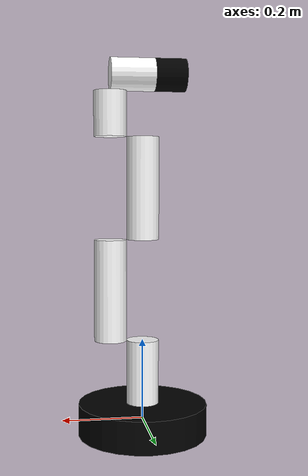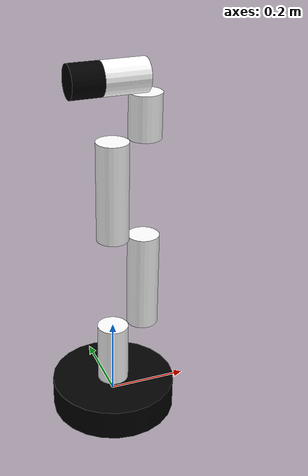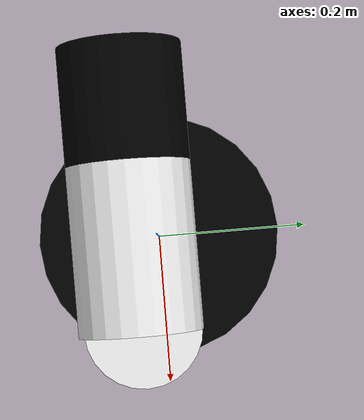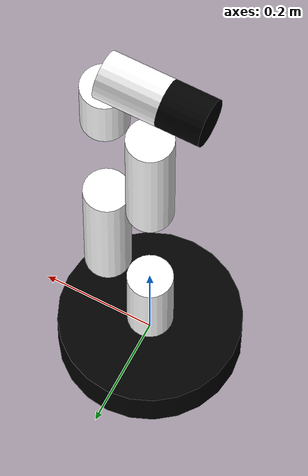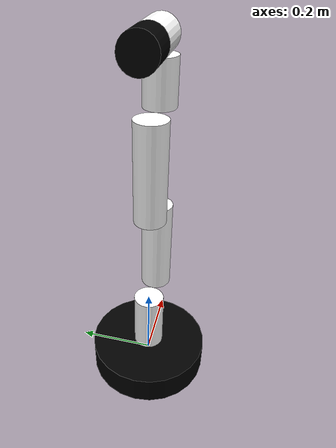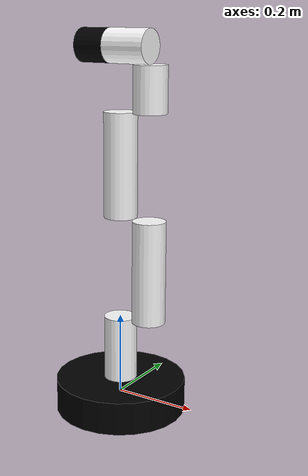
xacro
<?xml version="1.0"?>
<robot  xmlns:xacro="http://www.ros.org/wiki/xacro" name="firefighter_custom" >

<xacro:property name="width" value=".2" />
<xacro:property name="link1_length" value="0.19934" />
<xacro:property name="link2_length" value="0.25" />
<xacro:property name="radius" value="0.04" />
<xacro:property name="link4_length" value="0.1091" />
<xacro:property name="link5_length" value="0.108" />
<xacro:property name="link6_length" value="0.07586" />
<xacro:macro name="color_blue">
  <material name="blue">
    <color rgba="0 0 1 1"/>
  </material>
</xacro:macro>
<xacro:macro name="color_white">
  <material name="white">
    <color rgba="1 1 1 1"/>
  </material>
</xacro:macro>
<xacro:macro name="color_black">
  <material name="black">
    <color rgba="0 0 0 1"/>
  </material>
</xacro:macro>

<xacro:macro name="cylinder_inertia" params="m r h xyz rpy">
        <inertial>
            <origin xyz="${xyz}" rpy="${rpy}" />
            <mass value="${m}" />
            <inertia ixx="${(m/12) * (3*r*r + h*h)}" ixy="0" ixz="0"
                     iyy="${(m/12) * (3*r*r + h*h)}" iyz="0"
                     izz="${(m/2) * (r*r)}" />
        </inertial>
    </xacro:macro>

  <link name="base">
  <visual>
      <geometry>
       <cylinder length="0.08" radius="0.16"/>
      </geometry>
    <origin xyz = "0 0 0 " rpy = " 0 0 0"/>
    <xacro:color_black />
    </visual>
    <collision>
      <geometry>
       <cylinder length="0.08" radius="0.16"/>
      </geometry>
    <origin xyz = "0 0 0 " rpy = " 0 0 0"/>
    </collision>
    <xacro:cylinder_inertia m="5" r="0.16" h="0.08"
                                    xyz="0 0 0" rpy="0 0 0" />
  </link>

  <link name="link1">
    <visual>
      <geometry>
       <cylinder length="${link1_length}" radius="0.04"/>
      </geometry>
    <origin xyz = "0 0 0 " rpy = " 0 0 0"/>
    <xacro:color_white />
    </visual>
    <collision>
      <geometry>
       <cylinder length="${link1_length}" radius="0.04"/>
      </geometry>
    <origin xyz = "0 0 0 " rpy = " 0 0 0"/>
    </collision>
    <xacro:cylinder_inertia m="0.2" r="${radius}" h="${link1_length}"
                                    xyz="0 0 0" rpy="0 0 0" />
  </link>

  <link name="link2">
    <visual>
      <geometry>
      <cylinder length="${link2_length}" radius="0.04"/>
      </geometry>
    <origin xyz = "0 0 ${link2_length / 2.0} " rpy = "0 0 0"/>
    <xacro:color_white />
    </visual>
    <collision>
      <geometry>
       <cylinder length="${link2_length}" radius="0.04"/>
      </geometry>
    <origin xyz = "0 0 ${link2_length / 2.0} " rpy = "0 0 0"/>
    </collision>
    <xacro:cylinder_inertia m="0.2" r="${radius}" h="${link2_length}"
                                    xyz="0 0 ${link2_length / 2.0}" rpy="0 0 0" />
  </link>

  <link name="link3">
    <visual>
      <geometry>
       <cylinder length="${link2_length}" radius="0.04"/>
      </geometry>
    <origin xyz = "0 0 ${link2_length / 2.0}" rpy = " 0 0 0"/>
    <xacro:color_white />
    </visual>
    <collision>
      <geometry>
       <cylinder length="${link2_length}" radius="0.04"/>
      </geometry>
    <origin xyz = "0 0 ${link2_length / 2.0}" rpy = " 0 0 0"/>
    </collision>
    <xacro:cylinder_inertia m="0.2" r="${radius}" h="${link2_length}"
                                    xyz="0 0 ${link2_length / 2.0}" rpy="0 0 0" />
  </link>

  <link name="link4">
    <visual>
      <geometry>
       <cylinder length="${link4_length}" radius="0.04"/>
      </geometry>
    <origin xyz = "0 0 ${link4_length / 2.0}" rpy = " 0 0 0"/>
    <xacro:color_white />
    </visual>
    <collision>
      <geometry>
       <cylinder length="${link4_length}" radius="0.04"/>
      </geometry>
    <origin xyz = "0 0 ${link4_length / 2.0}" rpy = " 0 0 0"/>
      </collision>
    <xacro:cylinder_inertia m="0.2" r="${radius}" h="${link4_length}"
                                    xyz="0 0 ${link4_length / 2.0}" rpy="0 0 0" />
  </link>

<link name="link5">
    <visual>
      <geometry>
       <cylinder length="${link5_length}" radius="0.04"/>
      </geometry>
    <origin xyz = "0 0 ${-link5_length / 2.0}" rpy = " 0 0 0"/>
    <xacro:color_white />
    </visual>
    <collision>
      <geometry>
       <cylinder length="${link5_length}" radius="0.04"/>
      </geometry>
    <origin xyz = "0 0 ${-link5_length / 2.0}" rpy = " 0 0 0"/>
      </collision>
    <xacro:cylinder_inertia m="0.2" r="${radius}" h="${link5_length}"
                                    xyz="0 0 ${-link5_length / 2.0}" rpy="0 0 0" />
  </link>

  <link name="link6">
    <visual>
      <geometry>
      <cylinder length="${link6_length}" radius="0.04"/>
      </geometry>
    <origin xyz = "0 0  0 " rpy = " 0  0 0"/>
    <xacro:color_black/>
    </visual>
    <collision>
      <geometry>
       <cylinder length="${link6_length}" radius="0.04"/>
      </geometry>

    <origin xyz = "0 0  0 " rpy = " 0  0 0"/>
    </collision>
    <xacro:cylinder_inertia m="0.2" r="${radius}" h="${link6_length}"
                                    xyz="0 0 0" rpy="0 0 0" />
  </link>

    <joint name="joint2_to_joint1" type="revolute">
    <axis xyz="0 0 1"/>
    <limit effort = "1000.0" lower = "-3.14" upper = "3.14159" velocity = "0"/>
    <parent link="base"/>
    <child link="link1"/>
    <origin xyz= "0 0 ${link1_length / 2.0}" rpy = "0 0 0"/>
  </joint>

  <joint name="joint3_to_joint2" type="revolute">
    <axis xyz="-1 0 0"/>
    <limit effort = "1000.0" lower = "-3.14" upper = "3.14159" velocity = "0"/>
    <parent link="link1"/>
    <child link="link2"/>
    <origin xyz= "${2.0 * radius} 0 ${link1_length / 2.0}" rpy = "0 0 0"/>
  </joint>

  <joint name="joint4_to_joint3" type="revolute">
    <axis xyz=" -1 0 0"/>
    <limit effort = "1000.0" lower = "-3.14" upper = "3.14159" velocity = "0"/>
    <parent link="link2"/>
    <child link="link3"/>
    <origin xyz= "${-2.0 * radius} 0 ${2.0 * link2_length / 2.0}" rpy = "0 0 0"/>
  </joint>

  <joint name="joint5_to_joint4" type="revolute">
    <axis xyz=" -1 0 0"/>
    <limit effort = "1000.0" lower = "-3.14" upper = "3.14159" velocity = "0"/>
    <parent link="link3"/>
    <child link="link4"/>
    <origin xyz= "${2.0 * radius} 0 ${link2_length}" rpy = "0 0 0"/>
  </joint>

  <joint name="joint6_to_joint5" type="revolute">
    <axis xyz="1 0 0"/>
    <limit effort = "1000.0" lower = "-3.14" upper = "3.14159" velocity = "0"/>
    <parent link="link4"/>
    <child link="link5"/>
    <origin xyz= "0 0 ${((link4_length + link5_length) / 2.0) + radius}" rpy = "0 ${pi / 2.0} 0"/>
  </joint>

  <joint name="joint6output_to_joint6" type="revolute">
    <axis xyz="0 0 -1"/>
    <limit effort = "1000.0" lower = "-3.14" upper = "3.14159" velocity = "0"/>
    <parent link="link5"/>
    <child link="link6"/>
    <origin xyz= "0 0 -${link5_length + link6_length / 2.0}" rpy = "0 0 0 "/>
  </joint>

  <gazebo reference="base">
        <material>Gazebo/Black</material>
    </gazebo>

    <gazebo reference="link1">
        <material>Gazebo/White</material>
    </gazebo>

    <gazebo reference="link2">
        <material>Gazebo/White</material>
    </gazebo>

    <gazebo reference="link3">
        <material>Gazebo/White</material>
    </gazebo>

    <gazebo reference="link4">
        <material>Gazebo/White</material>
    </gazebo>

    <gazebo reference="link5">
        <material>Gazebo/White</material>
    </gazebo>

    <gazebo reference="link6">
        <material>Gazebo/Black</material>
    </gazebo>

    <ros2_control name="GazeboSimSystem" type="system">
      <hardware>
        <plugin>gazebo_ros2_control/GazeboSystem</plugin>
      </hardware>
      <joint name="joint2_to_joint1">
        <command_interface name="position"/>
        <state_interface name="position">
          <param name="initial_value">0.0</param>
        </state_interface>
        <state_interface name="velocity"/>
      </joint>
      <joint name="joint3_to_joint2">
        <command_interface name="position"/>
        <state_interface name="position">
          <param name="initial_value">0.0</param>
        </state_interface>
        <state_interface name="velocity"/>
      </joint>
      <joint name="joint4_to_joint3">
        <command_interface name="position"/>
        <state_interface name="position">
          <param name="initial_value">0.0</param>
        </state_interface>
        <state_interface name="velocity"/>
      </joint>
      <joint name="joint5_to_joint4">
        <command_interface name="position"/>
        <state_interface name="position">
          <param name="initial_value">0.0</param>
        </state_interface>
        <state_interface name="velocity"/>
      </joint>
      <joint name="joint6_to_joint5">
        <command_interface name="position"/>
        <state_interface name="position">
          <param name="initial_value">0.0</param>
        </state_interface>
        <state_interface name="velocity"/>
      </joint>
      <joint name="joint6output_to_joint6">
        <command_interface name="position"/>
        <state_interface name="position">
          <param name="initial_value">0.0</param>
        </state_interface>
        <state_interface name="velocity"/>
      </joint>
    </ros2_control>
    <gazebo>
    <plugin name="gazebo_ros2_control" filename="libgazebo_ros2_control.so">
      <parameters>$(find robot_bringup)/config/</parameters>
    </plugin>
    </gazebo>
</robot>
